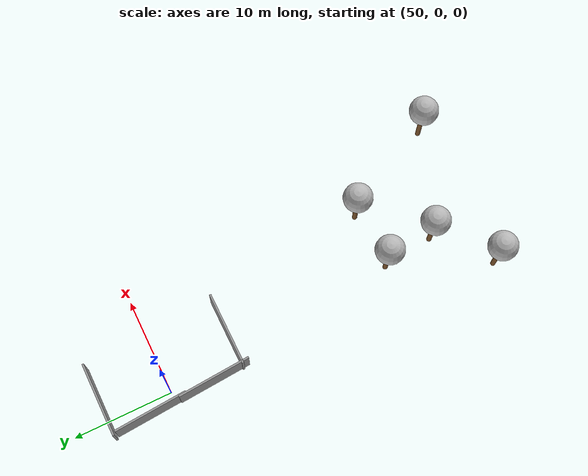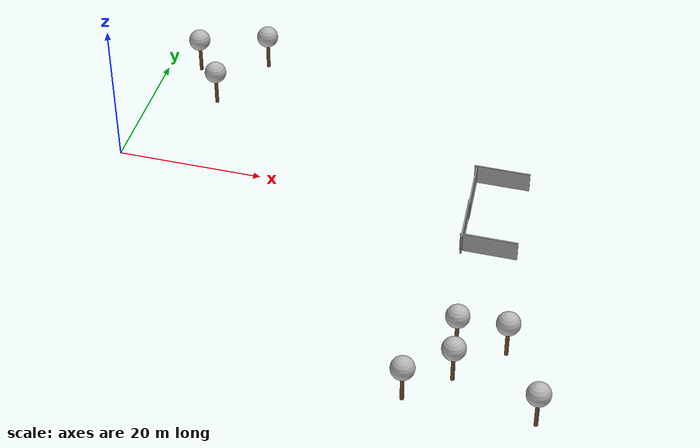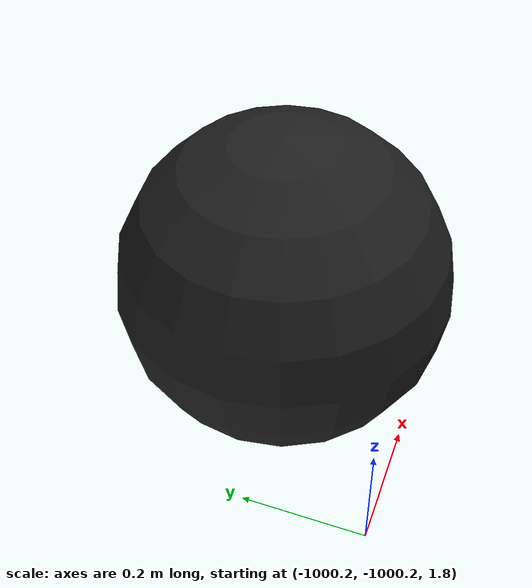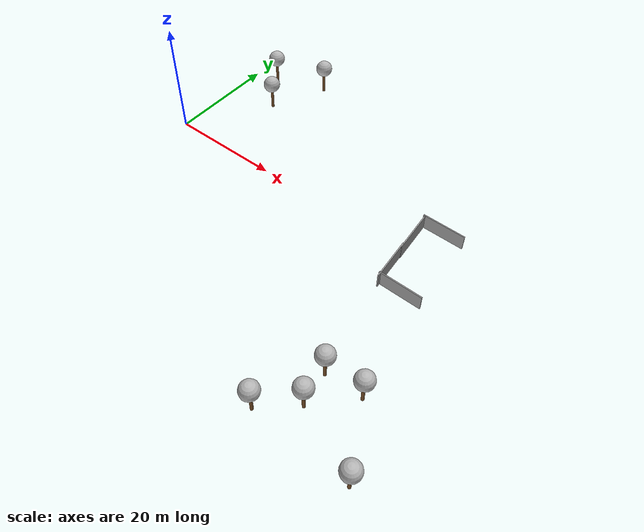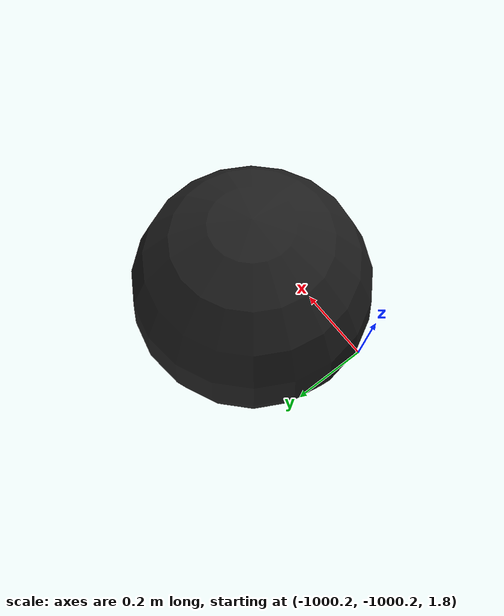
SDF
<sdf version="1.7">
 <world name="default">
  <plugin name="mrs_gazebo_static_transform_republisher_plugin" filename="libMrsGazeboCommonResources_StaticTransformRepublisher.so"/>
  <spherical_coordinates>
   <surface_model>EARTH_WGS84</surface_model>
   <latitude_deg>47.3977</latitude_deg>
   <longitude_deg>8.54559</longitude_deg>
   <elevation>0</elevation>
   <heading_deg>0</heading_deg>
  </spherical_coordinates>
  <physics name="default_physics" default="0" type="ode">
   <ode>
    <solver>
     <type>quick</type>
     <iters>10</iters>
     <sor>1.3</sor>
     <use_dynamic_moi_rescaling>0</use_dynamic_moi_rescaling>
    </solver>
    <constraints>
     <cfm>0</cfm>
     <erp>0.2</erp>
     <contact_max_correcting_vel>1000</contact_max_correcting_vel>
     <contact_surface_layer>0.001</contact_surface_layer>
    </constraints>
   </ode>
   <max_step_size>0.004</max_step_size>
   <real_time_factor>1</real_time_factor>
   <real_time_update_rate>250</real_time_update_rate>
  </physics>
  <scene><shadows>0</shadows><ambient>0.4 0.4 0.4 1</ambient><background>0.7 0.7 0.7 1</background></scene>
  <light name="sun" type="directional">
   <pose>0 0 1000 0.4 0.2 0</pose>
   <diffuse>1 1 1 1</diffuse>
   <specular>0.6 0.6 0.6 1</specular>
   <direction>0.1 0.1 -0.9</direction>
   <attenuation>
    <range>20</range>
    <constant>0.5</constant>
    <linear>0.01</linear>
    <quadratic>0.001</quadratic>
   </attenuation>
   <spot><inner_angle>0</inner_angle><outer_angle>0</outer_angle><falloff>0</falloff></spot>
  </light>
  <model name="the_void">
   <static>1</static>
   <link name="link">
    <pose>0 0 0.1 0 -0 0</pose>
    <visual name="the_void">
     <pose>0 0 2 0 -0 0</pose>
     <geometry><sphere><radius>0.25</radius></sphere></geometry>
     <material>
      <script><uri>file://media/materials/scripts/Gazebo.material</uri><name>Gazebo/Black</name></script>
     </material>
    </visual>
   </link>
   <pose>-1000 -1000 0 0 -0 0</pose>
  </model>
  <plugin name="mrs_gazebo_rviz_cam_synchronizer" filename="libMrsGazeboCommonResources_RvizCameraSynchronizer.so">
   <target_frame_id>gazebo_user_camera</target_frame_id>
   <world_origin_frame_id>uav1/gps_origin</world_origin_frame_id>
   <frame_to_follow>uav1</frame_to_follow>
  </plugin>
  <gravity>0 0 -9.8066</gravity>
  <magnetic_field>6e-06 2.3e-05 -4.2e-05</magnetic_field>
  <atmosphere type="adiabatic"/>
  <model name="tree_simple">
   <static>1</static>
   <link name="link">
    <pose>0 0 0.1 0 -0 0</pose>
    <inertial>
     <mass>666</mass>
     <inertia>
      <ixx>0.0861167</ixx>
      <ixy>0</ixy>
      <ixz>0</ixz>
      <iyy>0.0861167</iyy>
      <iyz>0</iyz>
      <izz>0.0861167</izz>
     </inertia>
    </inertial>
    <collision name="collision_trunk">
     <pose>0 0 2 0 -0 0</pose>
     <geometry><cylinder><radius>0.25</radius><length>4</length></cylinder></geometry>
     <surface>
      <contact>
       <poissons_ratio>0.347</poissons_ratio>
       <elastic_modulus>8.8e+09</elastic_modulus>
       <ode><kp>100000</kp><kd>100</kd><max_vel>100</max_vel><min_depth>0.001</min_depth></ode>
      </contact>
      <friction>
       <torsional>
        <coefficient>1</coefficient>
        <use_patch_radius>0</use_patch_radius>
        <surface_radius>0.01</surface_radius>
       </torsional>
      </friction>
     </surface>
    </collision>
    <collision name="collision_treetop">
     <pose>0 0 5.2 0 -0 0</pose>
     <geometry><sphere><radius>1.5</radius></sphere></geometry>
     <surface>
      <contact>
       <poissons_ratio>0.347</poissons_ratio>
       <elastic_modulus>8.8e+09</elastic_modulus>
       <ode><kp>100000</kp><kd>100</kd><max_vel>100</max_vel><min_depth>0.001</min_depth></ode>
      </contact>
      <friction>
       <torsional>
        <coefficient>1</coefficient>
        <use_patch_radius>0</use_patch_radius>
        <surface_radius>0.01</surface_radius>
       </torsional>
      </friction>
     </surface>
    </collision>
    <visual name="trunk">
     <pose>0 0 2 0 -0 0</pose>
     <geometry><cylinder><radius>0.25</radius><length>4</length></cylinder></geometry>
     <material>
      <script>
       <uri>model://tree_simple/scripts</uri>
       <uri>model://tree_simple/materials/textures</uri>
       <name>TreeSimple/Trunk</name>
      </script>
     </material>
    </visual>
    <visual name="treetop">
     <pose>0 0 5.2 0 -0 0</pose>
     <geometry><sphere><radius>1.5</radius></sphere></geometry>
     <material>
      <script>
       <uri>model://tree_simple/scripts</uri>
       <uri>model://tree_simple/materials/textures</uri>
       <name>TreeSimple/Treetop</name>
      </script>
     </material>
    </visual>
   </link>
   <pose>9.30508 14.1042 0 0 -0 0</pose>
  </model>
  <model name="grey_wall">
   <static>1</static>
   <link name="link">
    <pose>0 0 1.4 0 -0 0</pose>
    <collision name="collision"><geometry><box><size>7.5 0.2 2.8</size></box></geometry></collision>
    <visual name="visual">
     <cast_shadows>0</cast_shadows>
     <geometry><box><size>7.5 0.2 2.8</size></box></geometry>
     <material>
      <script>
       <uri>model://grey_wall/materials/scripts</uri>
       <uri>model://grey_wall/materials/textures</uri>
       <name>vrc/grey_wall</name>
      </script>
     </material>
    </visual>
   </link>
   <pose>51.8118 6.42247 0 0 -0 0</pose>
  </model>
  <model name="grey_wall_0">
   <static>1</static>
   <link name="link">
    <pose>0 0 1.4 0 -0 0</pose>
    <collision name="collision"><geometry><box><size>7.5 0.2 2.8</size></box></geometry></collision>
    <visual name="visual">
     <cast_shadows>0</cast_shadows>
     <geometry><box><size>7.5 0.2 2.8</size></box></geometry>
     <material>
      <script>
       <uri>model://grey_wall/materials/scripts</uri>
       <uri>model://grey_wall/materials/textures</uri>
       <name>vrc/grey_wall</name>
      </script>
     </material>
    </visual>
   </link>
   <pose>48.6555 2.45047 0 0 0 -1.49818</pose>
  </model>
  <model name="grey_wall_clone">
   <static>1</static>
   <link name="link">
    <pose>0 0 1.4 0 -0 0</pose>
    <collision name="collision"><geometry><box><size>7.5 0.2 2.8</size></box></geometry></collision>
    <visual name="visual">
     <cast_shadows>0</cast_shadows>
     <geometry><box><size>7.5 0.2 2.8</size></box></geometry>
     <material>
      <script>
       <uri>model://grey_wall/materials/scripts</uri>
       <uri>model://grey_wall/materials/textures</uri>
       <name>vrc/grey_wall</name>
      </script>
     </material>
    </visual>
   </link>
   <pose>52.7782 -7.27109 0 0 -0 0</pose>
  </model>
  <model name="grey_wall_0_clone">
   <static>1</static>
   <link name="link">
    <pose>0 0 1.4 0 -0 0</pose>
    <collision name="collision"><geometry><box><size>7.5 0.2 2.8</size></box></geometry></collision>
    <visual name="visual">
     <cast_shadows>0</cast_shadows>
     <geometry><box><size>7.5 0.2 2.8</size></box></geometry>
     <material>
      <script>
       <uri>model://grey_wall/materials/scripts</uri>
       <uri>model://grey_wall/materials/textures</uri>
       <name>vrc/grey_wall</name>
      </script>
     </material>
    </visual>
   </link>
   <pose>49.0403 -4.22627 0 0 0 -1.49818</pose>
  </model>
  <model name="tree_simple_clone">
   <static>1</static>
   <link name="link">
    <pose>0 0 0.1 0 -0 0</pose>
    <inertial>
     <mass>666</mass>
     <inertia>
      <ixx>0.0861167</ixx>
      <ixy>0</ixy>
      <ixz>0</ixz>
      <iyy>0.0861167</iyy>
      <iyz>0</iyz>
      <izz>0.0861167</izz>
     </inertia>
    </inertial>
    <collision name="collision_trunk">
     <pose>0 0 2 0 -0 0</pose>
     <geometry><cylinder><radius>0.25</radius><length>4</length></cylinder></geometry>
     <surface>
      <contact>
       <poissons_ratio>0.347</poissons_ratio>
       <elastic_modulus>8.8e+09</elastic_modulus>
       <ode><kp>100000</kp><kd>100</kd><max_vel>100</max_vel><min_depth>0.001</min_depth></ode>
      </contact>
      <friction>
       <torsional>
        <coefficient>1</coefficient>
        <use_patch_radius>0</use_patch_radius>
        <surface_radius>0.01</surface_radius>
       </torsional>
      </friction>
     </surface>
    </collision>
    <collision name="collision_treetop">
     <pose>0 0 5.2 0 -0 0</pose>
     <geometry><sphere><radius>1.5</radius></sphere></geometry>
     <surface>
      <contact>
       <poissons_ratio>0.347</poissons_ratio>
       <elastic_modulus>8.8e+09</elastic_modulus>
       <ode><kp>100000</kp><kd>100</kd><max_vel>100</max_vel><min_depth>0.001</min_depth></ode>
      </contact>
      <friction>
       <torsional>
        <coefficient>1</coefficient>
        <use_patch_radius>0</use_patch_radius>
        <surface_radius>0.01</surface_radius>
       </torsional>
      </friction>
     </surface>
    </collision>
    <visual name="trunk">
     <pose>0 0 2 0 -0 0</pose>
     <geometry><cylinder><radius>0.25</radius><length>4</length></cylinder></geometry>
     <material>
      <script>
       <uri>model://tree_simple/scripts</uri>
       <uri>model://tree_simple/materials/textures</uri>
       <name>TreeSimple/Trunk</name>
      </script>
     </material>
    </visual>
    <visual name="treetop">
     <pose>0 0 5.2 0 -0 0</pose>
     <geometry><sphere><radius>1.5</radius></sphere></geometry>
     <material>
      <script>
       <uri>model://tree_simple/scripts</uri>
       <uri>model://tree_simple/materials/textures</uri>
       <name>TreeSimple/Treetop</name>
      </script>
     </material>
    </visual>
   </link>
   <pose>4.72467 20.827 0 0 -0 0</pose>
  </model>
  <model name="tree_simple_clone_0">
   <static>1</static>
   <link name="link">
    <pose>0 0 0.1 0 -0 0</pose>
    <inertial>
     <mass>666</mass>
     <inertia>
      <ixx>0.0861167</ixx>
      <ixy>0</ixy>
      <ixz>0</ixz>
      <iyy>0.0861167</iyy>
      <iyz>0</iyz>
      <izz>0.0861167</izz>
     </inertia>
    </inertial>
    <collision name="collision_trunk">
     <pose>0 0 2 0 -0 0</pose>
     <geometry><cylinder><radius>0.25</radius><length>4</length></cylinder></geometry>
     <surface>
      <contact>
       <poissons_ratio>0.347</poissons_ratio>
       <elastic_modulus>8.8e+09</elastic_modulus>
       <ode><kp>100000</kp><kd>100</kd><max_vel>100</max_vel><min_depth>0.001</min_depth></ode>
      </contact>
      <friction>
       <torsional>
        <coefficient>1</coefficient>
        <use_patch_radius>0</use_patch_radius>
        <surface_radius>0.01</surface_radius>
       </torsional>
      </friction>
     </surface>
    </collision>
    <collision name="collision_treetop">
     <pose>0 0 5.2 0 -0 0</pose>
     <geometry><sphere><radius>1.5</radius></sphere></geometry>
     <surface>
      <contact>
       <poissons_ratio>0.347</poissons_ratio>
       <elastic_modulus>8.8e+09</elastic_modulus>
       <ode><kp>100000</kp><kd>100</kd><max_vel>100</max_vel><min_depth>0.001</min_depth></ode>
      </contact>
      <friction>
       <torsional>
        <coefficient>1</coefficient>
        <use_patch_radius>0</use_patch_radius>
        <surface_radius>0.01</surface_radius>
       </torsional>
      </friction>
     </surface>
    </collision>
    <visual name="trunk">
     <pose>0 0 2 0 -0 0</pose>
     <geometry><cylinder><radius>0.25</radius><length>4</length></cylinder></geometry>
     <material>
      <script>
       <uri>model://tree_simple/scripts</uri>
       <uri>model://tree_simple/materials/textures</uri>
       <name>TreeSimple/Trunk</name>
      </script>
     </material>
    </visual>
    <visual name="treetop">
     <pose>0 0 5.2 0 -0 0</pose>
     <geometry><sphere><radius>1.5</radius></sphere></geometry>
     <material>
      <script>
       <uri>model://tree_simple/scripts</uri>
       <uri>model://tree_simple/materials/textures</uri>
       <name>TreeSimple/Treetop</name>
      </script>
     </material>
    </visual>
   </link>
   <pose>13.9086 24.0506 0 0 -0 0</pose>
  </model>
  <model name="tree_simple_clone_1">
   <static>1</static>
   <link name="link">
    <pose>0 0 0.1 0 -0 0</pose>
    <inertial>
     <mass>666</mass>
     <inertia>
      <ixx>0.0861167</ixx>
      <ixy>0</ixy>
      <ixz>0</ixz>
      <iyy>0.0861167</iyy>
      <iyz>0</iyz>
      <izz>0.0861167</izz>
     </inertia>
    </inertial>
    <collision name="collision_trunk">
     <pose>0 0 2 0 -0 0</pose>
     <geometry><cylinder><radius>0.25</radius><length>4</length></cylinder></geometry>
     <surface>
      <contact>
       <poissons_ratio>0.347</poissons_ratio>
       <elastic_modulus>8.8e+09</elastic_modulus>
       <ode><kp>100000</kp><kd>100</kd><max_vel>100</max_vel><min_depth>0.001</min_depth></ode>
      </contact>
      <friction>
       <torsional>
        <coefficient>1</coefficient>
        <use_patch_radius>0</use_patch_radius>
        <surface_radius>0.01</surface_radius>
       </torsional>
      </friction>
     </surface>
    </collision>
    <collision name="collision_treetop">
     <pose>0 0 5.2 0 -0 0</pose>
     <geometry><sphere><radius>1.5</radius></sphere></geometry>
     <surface>
      <contact>
       <poissons_ratio>0.347</poissons_ratio>
       <elastic_modulus>8.8e+09</elastic_modulus>
       <ode><kp>100000</kp><kd>100</kd><max_vel>100</max_vel><min_depth>0.001</min_depth></ode>
      </contact>
      <friction>
       <torsional>
        <coefficient>1</coefficient>
        <use_patch_radius>0</use_patch_radius>
        <surface_radius>0.01</surface_radius>
       </torsional>
      </friction>
     </surface>
    </collision>
    <visual name="trunk">
     <pose>0 0 2 0 -0 0</pose>
     <geometry><cylinder><radius>0.25</radius><length>4</length></cylinder></geometry>
     <material>
      <script>
       <uri>model://tree_simple/scripts</uri>
       <uri>model://tree_simple/materials/textures</uri>
       <name>TreeSimple/Trunk</name>
      </script>
     </material>
    </visual>
    <visual name="treetop">
     <pose>0 0 5.2 0 -0 0</pose>
     <geometry><sphere><radius>1.5</radius></sphere></geometry>
     <material>
      <script>
       <uri>model://tree_simple/scripts</uri>
       <uri>model://tree_simple/materials/textures</uri>
       <name>TreeSimple/Treetop</name>
      </script>
     </material>
    </visual>
   </link>
   <pose>58.4134 -24.1294 0 0 -0 0</pose>
  </model>
  <model name="tree_simple_clone_2">
   <static>1</static>
   <link name="link">
    <pose>0 0 0.1 0 -0 0</pose>
    <inertial>
     <mass>666</mass>
     <inertia>
      <ixx>0.0861167</ixx>
      <ixy>0</ixy>
      <ixz>0</ixz>
      <iyy>0.0861167</iyy>
      <iyz>0</iyz>
      <izz>0.0861167</izz>
     </inertia>
    </inertial>
    <collision name="collision_trunk">
     <pose>0 0 2 0 -0 0</pose>
     <geometry><cylinder><radius>0.25</radius><length>4</length></cylinder></geometry>
     <surface>
      <contact>
       <poissons_ratio>0.347</poissons_ratio>
       <elastic_modulus>8.8e+09</elastic_modulus>
       <ode><kp>100000</kp><kd>100</kd><max_vel>100</max_vel><min_depth>0.001</min_depth></ode>
      </contact>
      <friction>
       <torsional>
        <coefficient>1</coefficient>
        <use_patch_radius>0</use_patch_radius>
        <surface_radius>0.01</surface_radius>
       </torsional>
      </friction>
     </surface>
    </collision>
    <collision name="collision_treetop">
     <pose>0 0 5.2 0 -0 0</pose>
     <geometry><sphere><radius>1.5</radius></sphere></geometry>
     <surface>
      <contact>
       <poissons_ratio>0.347</poissons_ratio>
       <elastic_modulus>8.8e+09</elastic_modulus>
       <ode><kp>100000</kp><kd>100</kd><max_vel>100</max_vel><min_depth>0.001</min_depth></ode>
      </contact>
      <friction>
       <torsional>
        <coefficient>1</coefficient>
        <use_patch_radius>0</use_patch_radius>
        <surface_radius>0.01</surface_radius>
       </torsional>
      </friction>
     </surface>
    </collision>
    <visual name="trunk">
     <pose>0 0 2 0 -0 0</pose>
     <geometry><cylinder><radius>0.25</radius><length>4</length></cylinder></geometry>
     <material>
      <script>
       <uri>model://tree_simple/scripts</uri>
       <uri>model://tree_simple/materials/textures</uri>
       <name>TreeSimple/Trunk</name>
      </script>
     </material>
    </visual>
    <visual name="treetop">
     <pose>0 0 5.2 0 -0 0</pose>
     <geometry><sphere><radius>1.5</radius></sphere></geometry>
     <material>
      <script>
       <uri>model://tree_simple/scripts</uri>
       <uri>model://tree_simple/materials/textures</uri>
       <name>TreeSimple/Treetop</name>
      </script>
     </material>
    </visual>
   </link>
   <pose>53.0188 -29.8065 0 0 -0 0</pose>
  </model>
  <model name="tree_simple_clone_3">
   <static>1</static>
   <link name="link">
    <pose>0 0 0.1 0 -0 0</pose>
    <inertial>
     <mass>666</mass>
     <inertia>
      <ixx>0.0861167</ixx>
      <ixy>0</ixy>
      <ixz>0</ixz>
      <iyy>0.0861167</iyy>
      <iyz>0</iyz>
      <izz>0.0861167</izz>
     </inertia>
    </inertial>
    <collision name="collision_trunk">
     <pose>0 0 2 0 -0 0</pose>
     <geometry><cylinder><radius>0.25</radius><length>4</length></cylinder></geometry>
     <surface>
      <contact>
       <poissons_ratio>0.347</poissons_ratio>
       <elastic_modulus>8.8e+09</elastic_modulus>
       <ode><kp>100000</kp><kd>100</kd><max_vel>100</max_vel><min_depth>0.001</min_depth></ode>
      </contact>
      <friction>
       <torsional>
        <coefficient>1</coefficient>
        <use_patch_radius>0</use_patch_radius>
        <surface_radius>0.01</surface_radius>
       </torsional>
      </friction>
     </surface>
    </collision>
    <collision name="collision_treetop">
     <pose>0 0 5.2 0 -0 0</pose>
     <geometry><sphere><radius>1.5</radius></sphere></geometry>
     <surface>
      <contact>
       <poissons_ratio>0.347</poissons_ratio>
       <elastic_modulus>8.8e+09</elastic_modulus>
       <ode><kp>100000</kp><kd>100</kd><max_vel>100</max_vel><min_depth>0.001</min_depth></ode>
      </contact>
      <friction>
       <torsional>
        <coefficient>1</coefficient>
        <use_patch_radius>0</use_patch_radius>
        <surface_radius>0.01</surface_radius>
       </torsional>
      </friction>
     </surface>
    </collision>
    <visual name="trunk">
     <pose>0 0 2 0 -0 0</pose>
     <geometry><cylinder><radius>0.25</radius><length>4</length></cylinder></geometry>
     <material>
      <script>
       <uri>model://tree_simple/scripts</uri>
       <uri>model://tree_simple/materials/textures</uri>
       <name>TreeSimple/Trunk</name>
      </script>
     </material>
    </visual>
    <visual name="treetop">
     <pose>0 0 5.2 0 -0 0</pose>
     <geometry><sphere><radius>1.5</radius></sphere></geometry>
     <material>
      <script>
       <uri>model://tree_simple/scripts</uri>
       <uri>model://tree_simple/materials/textures</uri>
       <name>TreeSimple/Treetop</name>
      </script>
     </material>
    </visual>
   </link>
   <pose>52.3124 -24.4393 0 0 -0 0</pose>
  </model>
  <model name="tree_simple_clone_4">
   <static>1</static>
   <link name="link">
    <pose>0 0 0.1 0 -0 0</pose>
    <inertial>
     <mass>666</mass>
     <inertia>
      <ixx>0.0861167</ixx>
      <ixy>0</ixy>
      <ixz>0</ixz>
      <iyy>0.0861167</iyy>
      <iyz>0</iyz>
      <izz>0.0861167</izz>
     </inertia>
    </inertial>
    <collision name="collision_trunk">
     <pose>0 0 2 0 -0 0</pose>
     <geometry><cylinder><radius>0.25</radius><length>4</length></cylinder></geometry>
     <surface>
      <contact>
       <poissons_ratio>0.347</poissons_ratio>
       <elastic_modulus>8.8e+09</elastic_modulus>
       <ode><kp>100000</kp><kd>100</kd><max_vel>100</max_vel><min_depth>0.001</min_depth></ode>
      </contact>
      <friction>
       <torsional>
        <coefficient>1</coefficient>
        <use_patch_radius>0</use_patch_radius>
        <surface_radius>0.01</surface_radius>
       </torsional>
      </friction>
     </surface>
    </collision>
    <collision name="collision_treetop">
     <pose>0 0 5.2 0 -0 0</pose>
     <geometry><sphere><radius>1.5</radius></sphere></geometry>
     <surface>
      <contact>
       <poissons_ratio>0.347</poissons_ratio>
       <elastic_modulus>8.8e+09</elastic_modulus>
       <ode><kp>100000</kp><kd>100</kd><max_vel>100</max_vel><min_depth>0.001</min_depth></ode>
      </contact>
      <friction>
       <torsional>
        <coefficient>1</coefficient>
        <use_patch_radius>0</use_patch_radius>
        <surface_radius>0.01</surface_radius>
       </torsional>
      </friction>
     </surface>
    </collision>
    <visual name="trunk">
     <pose>0 0 2 0 -0 0</pose>
     <geometry><cylinder><radius>0.25</radius><length>4</length></cylinder></geometry>
     <material>
      <script>
       <uri>model://tree_simple/scripts</uri>
       <uri>model://tree_simple/materials/textures</uri>
       <name>TreeSimple/Trunk</name>
      </script>
     </material>
    </visual>
    <visual name="treetop">
     <pose>0 0 5.2 0 -0 0</pose>
     <geometry><sphere><radius>1.5</radius></sphere></geometry>
     <material>
      <script>
       <uri>model://tree_simple/scripts</uri>
       <uri>model://tree_simple/materials/textures</uri>
       <name>TreeSimple/Treetop</name>
      </script>
     </material>
    </visual>
   </link>
   <pose>47.9402 -34.345 0 0 -0 0</pose>
  </model>
  <model name="tree_simple_clone_1_clone">
   <static>1</static>
   <link name="link">
    <pose>0 0 0.1 0 -0 0</pose>
    <inertial>
     <mass>666</mass>
     <inertia>
      <ixx>0.0861167</ixx>
      <ixy>0</ixy>
      <ixz>0</ixz>
      <iyy>0.0861167</iyy>
      <iyz>0</iyz>
      <izz>0.0861167</izz>
     </inertia>
    </inertial>
    <collision name="collision_trunk">
     <pose>0 0 2 0 -0 0</pose>
     <geometry><cylinder><radius>0.25</radius><length>4</length></cylinder></geometry>
     <surface>
      <contact>
       <poissons_ratio>0.347</poissons_ratio>
       <elastic_modulus>8.8e+09</elastic_modulus>
       <ode><kp>100000</kp><kd>100</kd><max_vel>100</max_vel><min_depth>0.001</min_depth></ode>
      </contact>
      <friction>
       <torsional>
        <coefficient>1</coefficient>
        <use_patch_radius>0</use_patch_radius>
        <surface_radius>0.01</surface_radius>
       </torsional>
      </friction>
     </surface>
    </collision>
    <collision name="collision_treetop">
     <pose>0 0 5.2 0 -0 0</pose>
     <geometry><sphere><radius>1.5</radius></sphere></geometry>
     <surface>
      <contact>
       <poissons_ratio>0.347</poissons_ratio>
       <elastic_modulus>8.8e+09</elastic_modulus>
       <ode><kp>100000</kp><kd>100</kd><max_vel>100</max_vel><min_depth>0.001</min_depth></ode>
      </contact>
      <friction>
       <torsional>
        <coefficient>1</coefficient>
        <use_patch_radius>0</use_patch_radius>
        <surface_radius>0.01</surface_radius>
       </torsional>
      </friction>
     </surface>
    </collision>
    <visual name="trunk">
     <pose>0 0 2 0 -0 0</pose>
     <geometry><cylinder><radius>0.25</radius><length>4</length></cylinder></geometry>
     <material>
      <script>
       <uri>model://tree_simple/scripts</uri>
       <uri>model://tree_simple/materials/textures</uri>
       <name>TreeSimple/Trunk</name>
      </script>
     </material>
    </visual>
    <visual name="treetop">
     <pose>0 0 5.2 0 -0 0</pose>
     <geometry><sphere><radius>1.5</radius></sphere></geometry>
     <material>
      <script>
       <uri>model://tree_simple/scripts</uri>
       <uri>model://tree_simple/materials/textures</uri>
       <name>TreeSimple/Treetop</name>
      </script>
     </material>
    </visual>
   </link>
   <pose>63.8936 -34.3717 0 0 -0 0</pose>
  </model>
 </world>
</sdf>
